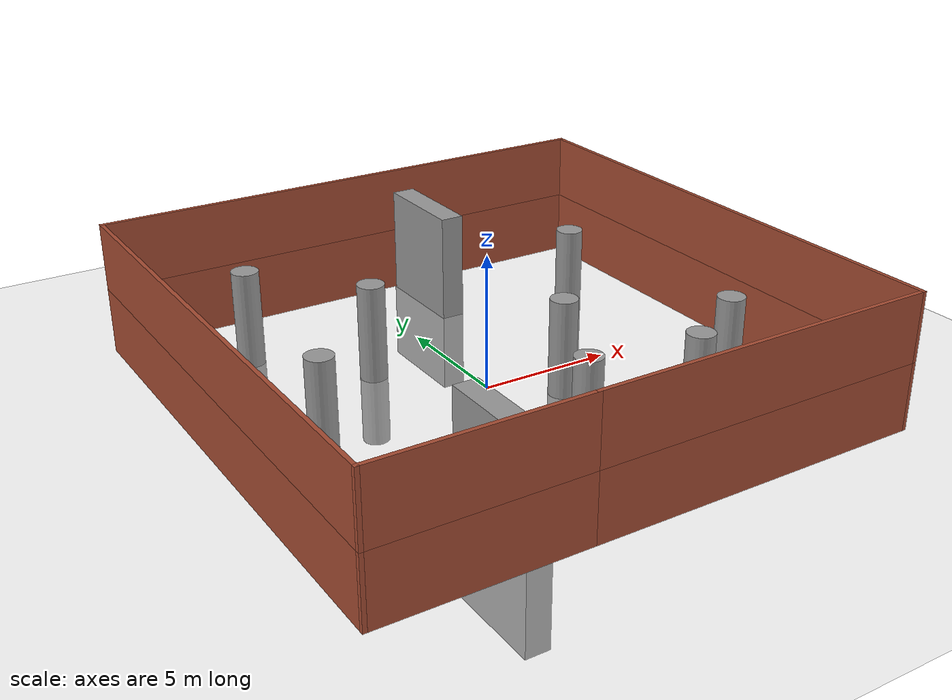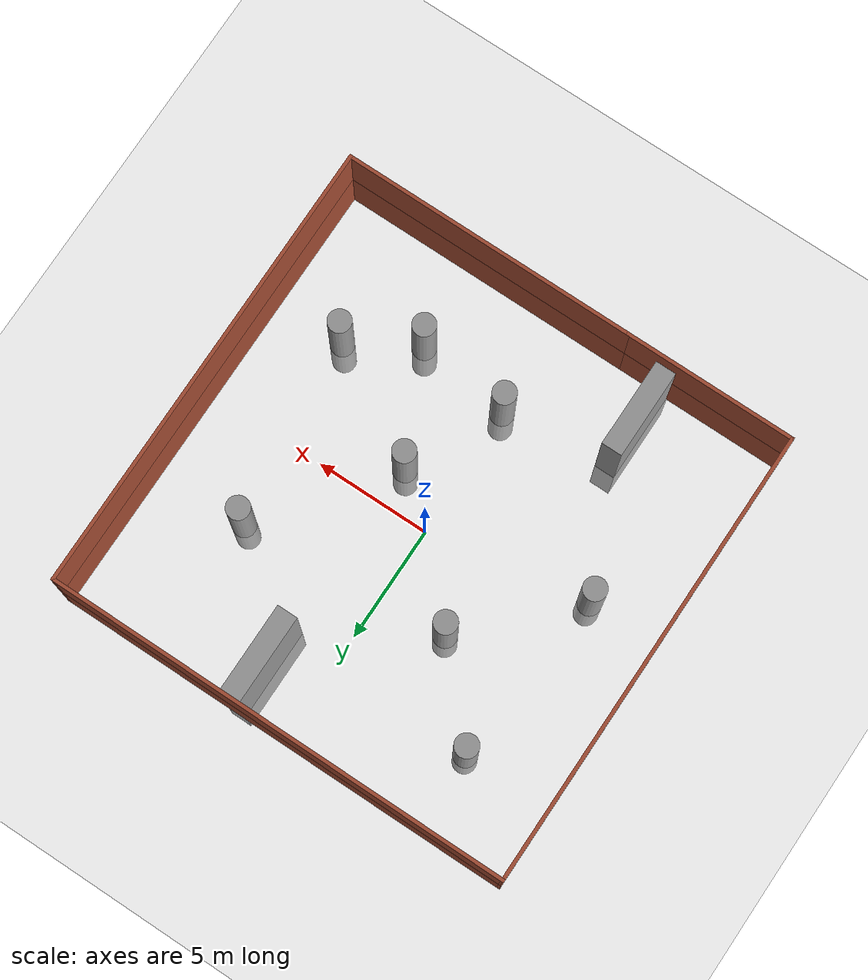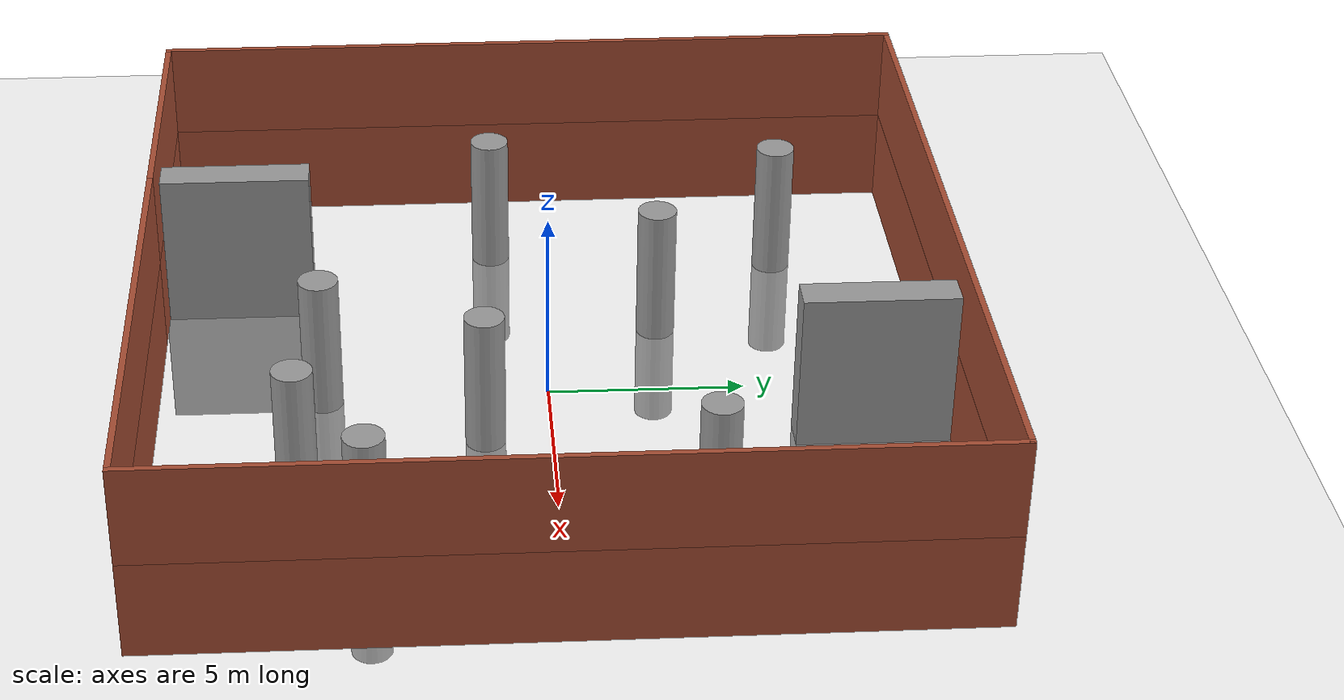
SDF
<sdf version="1.6">
 <world name="default">
  <light name="sun" type="directional">
   <pose>0 0 10 0 -0 0</pose>
   <diffuse>0.8 0.8 0.8 1</diffuse>
   <specular>0.2 0.2 0.2 1</specular>
   <attenuation>
    <range>1000</range>
    <constant>0.9</constant>
    <linear>0.01</linear>
    <quadratic>0.001</quadratic>
   </attenuation>
   <direction>-0.5 0.1 -0.9</direction>
  </light>
  <model name="ground_plane">
   <static>1</static>
   <link name="link">
    <collision name="collision">
     <geometry><plane><normal>0 0 1</normal><size>100 100</size></plane></geometry>
     <surface><friction><ode><mu>100</mu><mu2>50</mu2></ode></friction></surface>
    </collision>
    <visual name="visual">
     <cast_shadows>0</cast_shadows>
     <geometry><plane><normal>0 0 1</normal><size>100 100</size></plane></geometry>
     <material>
      <script><uri>file://media/materials/scripts/gazebo.material</uri><name>Gazebo/Grey</name></script>
     </material>
    </visual>
   </link>
  </model>
  <gravity>0 0 -9.8</gravity>
  <magnetic_field>6e-06 2.3e-05 -4.2e-05</magnetic_field>
  <atmosphere type="adiabatic"/>
  <physics name="default_physics" default="0" type="ode">
   <max_step_size>0.001</max_step_size>
   <real_time_factor>1</real_time_factor>
   <real_time_update_rate>1000</real_time_update_rate>
  </physics>
  <scene><ambient>0.4 0.4 0.4 1</ambient><background>0.7 0.7 0.7 1</background><shadows>1</shadows></scene>
  <spherical_coordinates>
   <surface_model>EARTH_WGS84</surface_model>
   <latitude_deg>0</latitude_deg>
   <longitude_deg>0</longitude_deg>
   <elevation>0</elevation>
   <heading_deg>0</heading_deg>
  </spherical_coordinates>
  <model name="unit_cylinder_1">
   <pose>-6.92537 -1.21944 0.5 -0 -0 -0</pose>
   <link name="link">
    <inertial>
     <mass>1</mass>
     <inertia><ixx>0.145833</ixx><ixy>0</ixy><ixz>0</ixz><iyy>0.145833</iyy><iyz>0</iyz><izz>0.125</izz></inertia>
    </inertial>
    <collision name="collision">
     <geometry><cylinder><radius>0.5</radius><length>6.16037</length></cylinder></geometry>
    </collision>
    <visual name="visual">
     <geometry><cylinder><radius>0.5</radius><length>6.16037</length></cylinder></geometry>
     <material>
      <script><name>Gazebo/Grey</name><uri>file://media/materials/scripts/gazebo.material</uri></script>
     </material>
    </visual>
   </link>
  </model>
  <model name="unit_box">
   <pose>2.20782 7.97464 0.499995 0 1e-05 0</pose>
   <link name="link">
    <inertial>
     <mass>1</mass>
     <inertia>
      <ixx>0.166667</ixx>
      <ixy>0</ixy>
      <ixz>0</ixz>
      <iyy>0.166667</iyy>
      <iyz>0</iyz>
      <izz>0.166667</izz>
     </inertia>
    </inertial>
    <collision name="collision"><geometry><box><size>0.890802 3.92924 7.18395</size></box></geometry></collision>
    <visual name="visual">
     <geometry><box><size>0.890802 3.92924 7.18395</size></box></geometry>
     <material>
      <script><name>Gazebo/Grey</name><uri>file://media/materials/scripts/gazebo.material</uri></script>
     </material>
    </visual>
   </link>
  </model>
  <model name="Walls">
   <pose>0.0113 0.01632 0 0 -0 0</pose>
   <link name="Wall_0">
    <collision name="Wall_0_Collision">
     <geometry><box><size>12.75 0.15 2.5</size></box></geometry>
     <pose>0 0 1.25 0 -0 0</pose>
    </collision>
    <visual name="Wall_0_Visual">
     <pose>0 0 1.25 0 -0 0</pose>
     <geometry><box><size>12.75 0.15 2.5</size></box></geometry>
     <material>
      <script><uri>file://media/materials/scripts/gazebo.material</uri><name>Gazebo/Bricks</name></script>
      <ambient>1 1 1 1</ambient>
     </material>
     <meta><layer>0</layer></meta>
    </visual>
    <pose>3.6 -9.925 0 0 -0 0</pose>
   </link>
   <link name="Wall_10">
    <collision name="Wall_10_Collision">
     <geometry><box><size>20.25 0.15 2.5</size></box></geometry>
     <pose>0 0 1.25 0 -0 0</pose>
    </collision>
    <visual name="Wall_10_Visual">
     <pose>0 0 1.25 0 -0 0</pose>
     <geometry><box><size>20.25 0.15 2.5</size></box></geometry>
     <material>
      <script><uri>file://media/materials/scripts/gazebo.material</uri><name>Gazebo/Bricks</name></script>
      <ambient>1 1 1 1</ambient>
     </material>
     <meta><layer>1</layer></meta>
    </visual>
    <pose>-0 9.925 2.5 0 -0 0</pose>
   </link>
   <link name="Wall_11">
    <collision name="Wall_11_Collision">
     <geometry><box><size>20 0.15 2.5</size></box></geometry>
     <pose>0 0 1.25 0 -0 0</pose>
    </collision>
    <visual name="Wall_11_Visual">
     <pose>0 0 1.25 0 -0 0</pose>
     <geometry><box><size>20 0.15 2.5</size></box></geometry>
     <material>
      <script><uri>file://media/materials/scripts/gazebo.material</uri><name>Gazebo/Bricks</name></script>
      <ambient>1 1 1 1</ambient>
     </material>
     <meta><layer>1</layer></meta>
    </visual>
    <pose>10.05 0 2.5 0 -0 -1.5708</pose>
   </link>
   <link name="Wall_2">
    <collision name="Wall_2_Collision">
     <geometry><box><size>7.5 0.15 2.5</size></box></geometry>
     <pose>0 0 1.25 0 -0 0</pose>
    </collision>
    <visual name="Wall_2_Visual">
     <pose>0 0 1.25 0 -0 0</pose>
     <geometry><box><size>7.5 0.15 2.5</size></box></geometry>
     <material>
      <script><uri>file://media/materials/scripts/gazebo.material</uri><name>Gazebo/Bricks</name></script>
      <ambient>1 1 1 1</ambient>
     </material>
     <meta><layer>0</layer></meta>
    </visual>
    <pose>-6.375 -9.925 0 0 -0 3.14159</pose>
   </link>
   <link name="Wall_3">
    <collision name="Wall_3_Collision">
     <geometry><box><size>20 0.15 2.5</size></box></geometry>
     <pose>0 0 1.25 0 -0 0</pose>
    </collision>
    <visual name="Wall_3_Visual">
     <pose>0 0 1.25 0 -0 0</pose>
     <geometry><box><size>20 0.15 2.5</size></box></geometry>
     <material>
      <script><uri>file://media/materials/scripts/gazebo.material</uri><name>Gazebo/Bricks</name></script>
      <ambient>1 1 1 1</ambient>
     </material>
     <meta><layer>0</layer></meta>
    </visual>
    <pose>-10.05 0 0 0 -0 1.5708</pose>
   </link>
   <link name="Wall_4">
    <collision name="Wall_4_Collision">
     <geometry><box><size>20.25 0.15 2.5</size></box></geometry>
     <pose>0 0 1.25 0 -0 0</pose>
    </collision>
    <visual name="Wall_4_Visual">
     <pose>0 0 1.25 0 -0 0</pose>
     <geometry><box><size>20.25 0.15 2.5</size></box></geometry>
     <material>
      <script><uri>file://media/materials/scripts/gazebo.material</uri><name>Gazebo/Bricks</name></script>
      <ambient>1 1 1 1</ambient>
     </material>
     <meta><layer>0</layer></meta>
    </visual>
    <pose>-0 9.925 0 0 -0 0</pose>
   </link>
   <link name="Wall_5">
    <collision name="Wall_5_Collision">
     <geometry><box><size>20 0.15 2.5</size></box></geometry>
     <pose>0 0 1.25 0 -0 0</pose>
    </collision>
    <visual name="Wall_5_Visual">
     <pose>0 0 1.25 0 -0 0</pose>
     <geometry><box><size>20 0.15 2.5</size></box></geometry>
     <material>
      <script><uri>file://media/materials/scripts/gazebo.material</uri><name>Gazebo/Bricks</name></script>
      <ambient>1 1 1 1</ambient>
     </material>
     <meta><layer>0</layer></meta>
    </visual>
    <pose>10.05 0 0 0 -0 -1.5708</pose>
   </link>
   <link name="Wall_7">
    <collision name="Wall_7_Collision">
     <geometry><box><size>12.75 0.15 2.5</size></box></geometry>
     <pose>0 0 1.25 0 -0 0</pose>
    </collision>
    <visual name="Wall_7_Visual">
     <pose>0 0 1.25 0 -0 0</pose>
     <geometry><box><size>12.75 0.15 2.5</size></box></geometry>
     <material>
      <script><uri>file://media/materials/scripts/gazebo.material</uri><name>Gazebo/Bricks</name></script>
      <ambient>1 1 1 1</ambient>
     </material>
     <meta><layer>1</layer></meta>
    </visual>
    <pose>3.6 -9.925 2.5 0 -0 0</pose>
   </link>
   <link name="Wall_8">
    <collision name="Wall_8_Collision">
     <geometry><box><size>7.5 0.15 2.5</size></box></geometry>
     <pose>0 0 1.25 0 -0 0</pose>
    </collision>
    <visual name="Wall_8_Visual">
     <pose>0 0 1.25 0 -0 0</pose>
     <geometry><box><size>7.5 0.15 2.5</size></box></geometry>
     <material>
      <script><uri>file://media/materials/scripts/gazebo.material</uri><name>Gazebo/Bricks</name></script>
      <ambient>1 1 1 1</ambient>
     </material>
     <meta><layer>1</layer></meta>
    </visual>
    <pose>-6.375 -9.925 2.5 0 -0 3.14159</pose>
   </link>
   <link name="Wall_9">
    <collision name="Wall_9_Collision">
     <geometry><box><size>20 0.15 2.5</size></box></geometry>
     <pose>0 0 1.25 0 -0 0</pose>
    </collision>
    <visual name="Wall_9_Visual">
     <pose>0 0 1.25 0 -0 0</pose>
     <geometry><box><size>20 0.15 2.5</size></box></geometry>
     <material>
      <script><uri>file://media/materials/scripts/gazebo.material</uri><name>Gazebo/Bricks</name></script>
      <ambient>1 1 1 1</ambient>
     </material>
     <meta><layer>1</layer></meta>
    </visual>
    <pose>-10.05 0 2.5 0 -0 1.5708</pose>
   </link>
   <static>1</static>
  </model>
  <model name="unit_box_clone">
   <pose>-4.53358 -7.95199 0.499995 0 1e-05 0</pose>
   <link name="link">
    <inertial>
     <mass>1</mass>
     <inertia>
      <ixx>0.166667</ixx>
      <ixy>0</ixy>
      <ixz>0</ixz>
      <iyy>0.166667</iyy>
      <iyz>0</iyz>
      <izz>0.166667</izz>
     </inertia>
    </inertial>
    <collision name="collision"><geometry><box><size>0.890802 3.92924 7.18395</size></box></geometry></collision>
    <visual name="visual">
     <geometry><box><size>0.890802 3.92924 7.18395</size></box></geometry>
     <material>
      <script><name>Gazebo/Grey</name><uri>file://media/materials/scripts/gazebo.material</uri></script>
     </material>
    </visual>
   </link>
  </model>
  <model name="unit_cylinder_1_clone">
   <pose>-6.16523 6.43957 0.5 0 -0 0</pose>
   <link name="link">
    <inertial>
     <mass>1</mass>
     <inertia><ixx>0.145833</ixx><ixy>0</ixy><ixz>0</ixz><iyy>0.145833</iyy><iyz>0</iyz><izz>0.125</izz></inertia>
    </inertial>
    <collision name="collision">
     <geometry><cylinder><radius>0.5</radius><length>6.16038</length></cylinder></geometry>
    </collision>
    <visual name="visual">
     <geometry><cylinder><radius>0.5</radius><length>6.16038</length></cylinder></geometry>
     <material>
      <script><name>Gazebo/Grey</name><uri>file://media/materials/scripts/gazebo.material</uri></script>
     </material>
    </visual>
   </link>
  </model>
  <model name="unit_cylinder_1_clone_0">
   <pose>-2.92426 2.98407 0.5 0 -0 0</pose>
   <link name="link">
    <inertial>
     <mass>1</mass>
     <inertia><ixx>0.145833</ixx><ixy>0</ixy><ixz>0</ixz><iyy>0.145833</iyy><iyz>0</iyz><izz>0.125</izz></inertia>
    </inertial>
    <collision name="collision">
     <geometry><cylinder><radius>0.5</radius><length>6.16038</length></cylinder></geometry>
    </collision>
    <visual name="visual">
     <geometry><cylinder><radius>0.5</radius><length>6.16038</length></cylinder></geometry>
     <material>
      <script><name>Gazebo/Grey</name><uri>file://media/materials/scripts/gazebo.material</uri></script>
     </material>
    </visual>
   </link>
  </model>
  <model name="unit_cylinder_1_clone_1">
   <pose>6.09764 3.70339 0.5 0 -0 0</pose>
   <link name="link">
    <inertial>
     <mass>1</mass>
     <inertia><ixx>0.145833</ixx><ixy>0</ixy><ixz>0</ixz><iyy>0.145833</iyy><iyz>0</iyz><izz>0.125</izz></inertia>
    </inertial>
    <collision name="collision">
     <geometry><cylinder><radius>0.5</radius><length>6.16038</length></cylinder></geometry>
    </collision>
    <visual name="visual">
     <geometry><cylinder><radius>0.5</radius><length>6.16038</length></cylinder></geometry>
     <material>
      <script><name>Gazebo/Grey</name><uri>file://media/materials/scripts/gazebo.material</uri></script>
     </material>
    </visual>
   </link>
  </model>
  <model name="unit_cylinder_1_clone_2">
   <pose>2.0585 -1.64966 0.5 0 -0 0</pose>
   <link name="link">
    <inertial>
     <mass>1</mass>
     <inertia><ixx>0.145833</ixx><ixy>0</ixy><ixz>0</ixz><iyy>0.145833</iyy><iyz>0</iyz><izz>0.125</izz></inertia>
    </inertial>
    <collision name="collision">
     <geometry><cylinder><radius>0.5</radius><length>6.16038</length></cylinder></geometry>
    </collision>
    <visual name="visual">
     <geometry><cylinder><radius>0.5</radius><length>6.16038</length></cylinder></geometry>
     <material>
      <script><name>Gazebo/Grey</name><uri>file://media/materials/scripts/gazebo.material</uri></script>
     </material>
    </visual>
   </link>
  </model>
  <model name="unit_cylinder_1_clone_3">
   <pose>7 -4.535 0.5 0 -0 0</pose>
   <link name="link">
    <inertial>
     <mass>1</mass>
     <inertia><ixx>0.145833</ixx><ixy>0</ixy><ixz>0</ixz><iyy>0.145833</iyy><iyz>0</iyz><izz>0.125</izz></inertia>
    </inertial>
    <collision name="collision">
     <geometry><cylinder><radius>0.5</radius><length>6.16038</length></cylinder></geometry>
    </collision>
    <visual name="visual">
     <geometry><cylinder><radius>0.5</radius><length>6.16038</length></cylinder></geometry>
     <material>
      <script><name>Gazebo/Grey</name><uri>file://media/materials/scripts/gazebo.material</uri></script>
     </material>
    </visual>
   </link>
  </model>
  <model name="unit_cylinder_1_clone_4">
   <pose>0.12717 -5.69427 0.5 0 -0 0</pose>
   <link name="link">
    <inertial>
     <mass>1</mass>
     <inertia><ixx>0.145833</ixx><ixy>0</ixy><ixz>0</ixz><iyy>0.145833</iyy><iyz>0</iyz><izz>0.125</izz></inertia>
    </inertial>
    <collision name="collision">
     <geometry><cylinder><radius>0.5</radius><length>6.16038</length></cylinder></geometry>
    </collision>
    <visual name="visual">
     <geometry><cylinder><radius>0.5</radius><length>6.16038</length></cylinder></geometry>
     <material>
      <script><name>Gazebo/Grey</name><uri>file://media/materials/scripts/gazebo.material</uri></script>
     </material>
    </visual>
   </link>
  </model>
  <model name="unit_cylinder_1_clone_5">
   <pose>4.19506 -6.23105 0.5 0 -0 0</pose>
   <link name="link">
    <inertial>
     <mass>1</mass>
     <inertia><ixx>0.145833</ixx><ixy>0</ixy><ixz>0</ixz><iyy>0.145833</iyy><iyz>0</iyz><izz>0.125</izz></inertia>
    </inertial>
    <collision name="collision">
     <geometry><cylinder><radius>0.5</radius><length>6.16038</length></cylinder></geometry>
    </collision>
    <visual name="visual">
     <geometry><cylinder><radius>0.5</radius><length>6.16038</length></cylinder></geometry>
     <material>
      <script><name>Gazebo/Grey</name><uri>file://media/materials/scripts/gazebo.material</uri></script>
     </material>
    </visual>
   </link>
  </model>
 </world>
</sdf>
